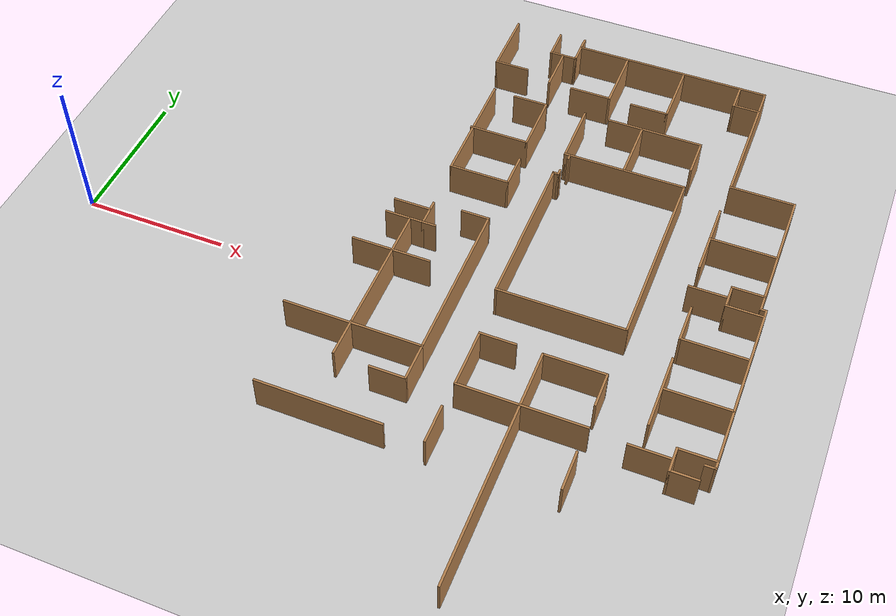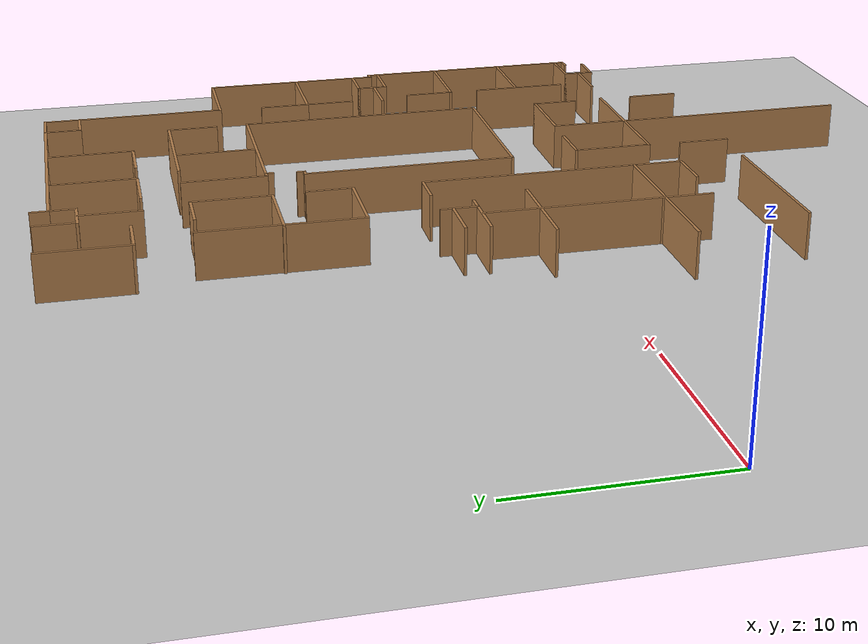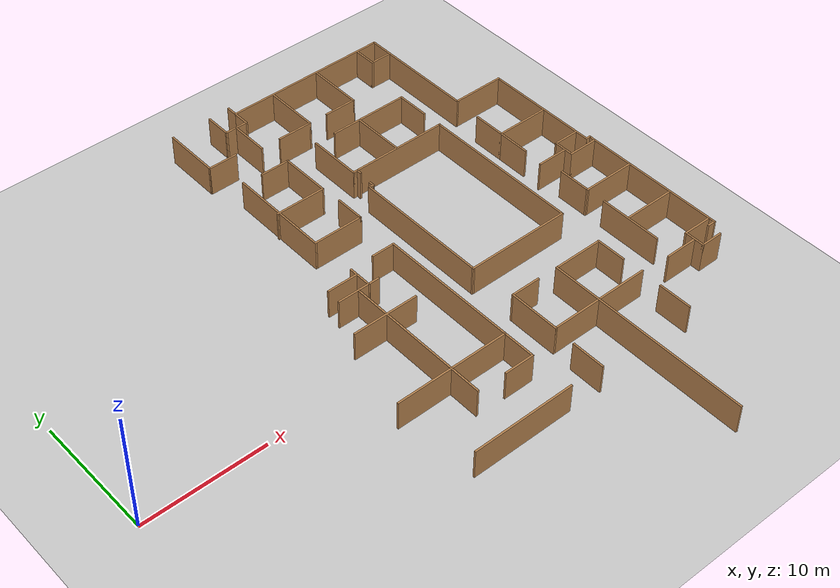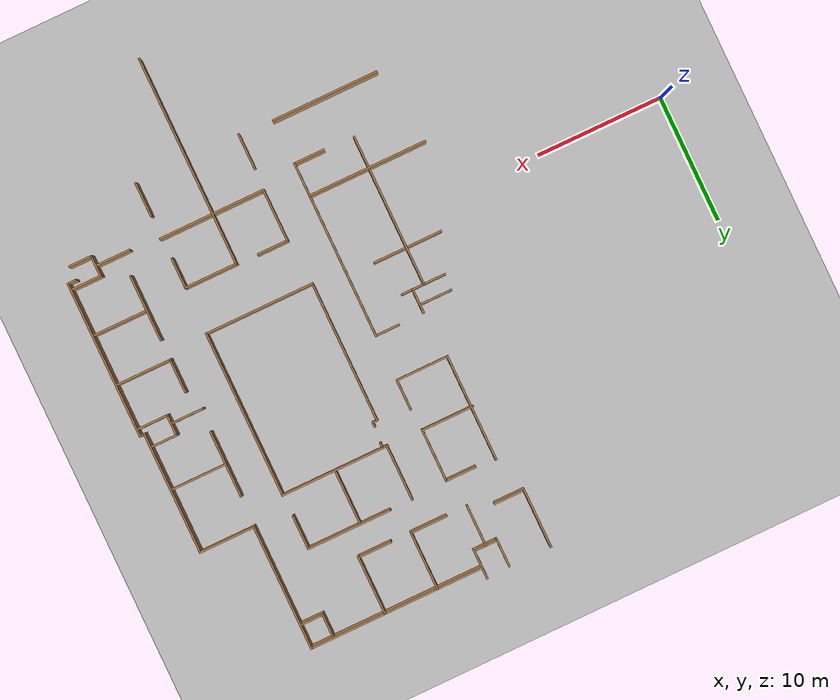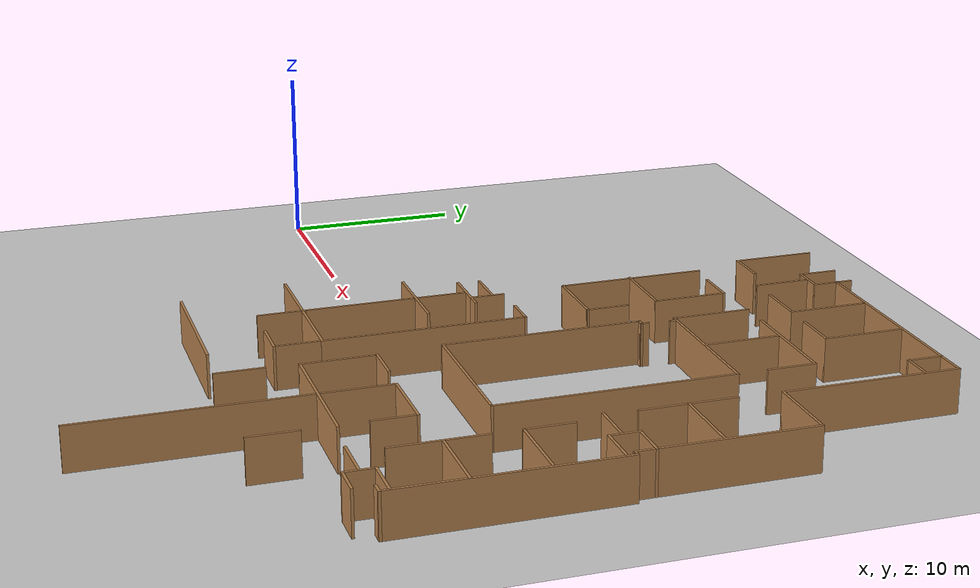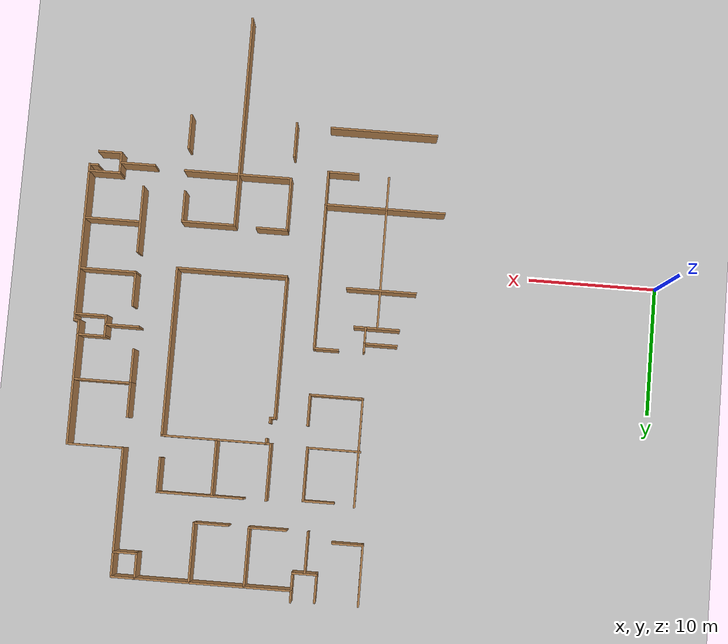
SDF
<sdf version="1.6">
 <world name="default">
  <model name="ground_plane">
   <static>1</static>
   <link name="link">
    <collision name="collision">
     <geometry><plane><normal>0 0 1</normal><size>100 100</size></plane></geometry>
     <surface><friction><ode><mu>100</mu><mu2>50</mu2></ode></friction></surface>
    </collision>
    <visual name="visual">
     <cast_shadows>0</cast_shadows>
     <geometry><plane><normal>0 0 1</normal><size>100 100</size></plane></geometry>
     <material>
      <script><uri>file://media/materials/scripts/gazebo.material</uri><name>Gazebo/Grey</name></script>
     </material>
    </visual>
   </link>
  </model>
  <model name="floor_plan">
   <link name="Wall_10">
    <collision name="Wall_10_Collision">
     <geometry><box><size>10 0.15 2.5</size></box></geometry>
     <pose>0 0 1.25 0 -0 0</pose>
    </collision>
    <visual name="Wall_10_Visual">
     <pose>0 0 1.25 0 -0 0</pose>
     <geometry><box><size>10 0.15 2.5</size></box></geometry>
     <material>
      <script><uri>file://media/materials/scripts/gazebo.material</uri><name>Gazebo/Wood</name></script>
      <ambient>1 1 1 1</ambient>
     </material>
    </visual>
    <pose>40.65 20.6964 0 0 0 -1.5708</pose>
   </link>
   <link name="Wall_100">
    <collision name="Wall_100_Collision">
     <geometry><box><size>2.25 0.15 2.5</size></box></geometry>
     <pose>0 0 1.25 0 -0 0</pose>
    </collision>
    <visual name="Wall_100_Visual">
     <pose>0 0 1.25 0 -0 0</pose>
     <geometry><box><size>2.25 0.15 2.5</size></box></geometry>
     <material>
      <script><uri>file://media/materials/scripts/gazebo.material</uri><name>Gazebo/Wood</name></script>
      <ambient>1 1 1 1</ambient>
     </material>
    </visual>
    <pose>24.95 25.3214 0 0 -0 1.5708</pose>
   </link>
   <link name="Wall_102">
    <collision name="Wall_102_Collision">
     <geometry><box><size>3.25 0.15 2.5</size></box></geometry>
     <pose>0 0 1.25 0 -0 0</pose>
    </collision>
    <visual name="Wall_102_Visual">
     <pose>0 0 1.25 0 -0 0</pose>
     <geometry><box><size>3.25 0.15 2.5</size></box></geometry>
     <material>
      <script><uri>file://media/materials/scripts/gazebo.material</uri><name>Gazebo/Wood</name></script>
      <ambient>1 1 1 1</ambient>
     </material>
    </visual>
    <pose>25.8652 22.6731 0 0 0 -1.5708</pose>
   </link>
   <link name="Wall_104">
    <collision name="Wall_104_Collision">
     <geometry><box><size>3 0.15 2.5</size></box></geometry>
     <pose>0 0 1.25 0 -0 0</pose>
    </collision>
    <visual name="Wall_104_Visual">
     <pose>0 0 1.25 0 -0 0</pose>
     <geometry><box><size>3 0.15 2.5</size></box></geometry>
     <material>
      <script><uri>file://media/materials/scripts/gazebo.material</uri><name>Gazebo/Wood</name></script>
      <ambient>1 1 1 1</ambient>
     </material>
    </visual>
    <pose>28.998 21.0922 0 0 -0 0</pose>
   </link>
   <link name="Wall_105">
    <collision name="Wall_105_Collision">
     <geometry><box><size>4.65 0.15 2.5</size></box></geometry>
     <pose>0 0 1.25 0 -0 0</pose>
    </collision>
    <visual name="Wall_105_Visual">
     <pose>0 0 1.25 0 -0 0</pose>
     <geometry><box><size>4.65 0.15 2.5</size></box></geometry>
     <material>
      <script><uri>file://media/materials/scripts/gazebo.material</uri><name>Gazebo/Wood</name></script>
      <ambient>1 1 1 1</ambient>
     </material>
    </visual>
    <pose>30.423 23.3422 0 0 -0 1.5708</pose>
   </link>
   <link name="Wall_107">
    <collision name="Wall_107_Collision">
     <geometry><box><size>2.75 0.15 2.5</size></box></geometry>
     <pose>0 0 1.25 0 -0 0</pose>
    </collision>
    <visual name="Wall_107_Visual">
     <pose>0 0 1.25 0 -0 0</pose>
     <geometry><box><size>2.75 0.15 2.5</size></box></geometry>
     <material>
      <script><uri>file://media/materials/scripts/gazebo.material</uri><name>Gazebo/Wood</name></script>
      <ambient>1 1 1 1</ambient>
     </material>
    </visual>
    <pose>33.3717 21.0672 0 0 -0 0</pose>
   </link>
   <link name="Wall_108">
    <collision name="Wall_108_Collision">
     <geometry><box><size>4.65 0.15 2.5</size></box></geometry>
     <pose>0 0 1.25 0 -0 0</pose>
    </collision>
    <visual name="Wall_108_Visual">
     <pose>0 0 1.25 0 -0 0</pose>
     <geometry><box><size>4.65 0.15 2.5</size></box></geometry>
     <material>
      <script><uri>file://media/materials/scripts/gazebo.material</uri><name>Gazebo/Wood</name></script>
      <ambient>1 1 1 1</ambient>
     </material>
    </visual>
    <pose>34.6717 23.3172 0 0 -0 1.5708</pose>
   </link>
   <link name="Wall_11">
    <collision name="Wall_11_Collision">
     <geometry><box><size>4.5 0.15 2.5</size></box></geometry>
     <pose>0 0 1.25 0 -0 0</pose>
    </collision>
    <visual name="Wall_11_Visual">
     <pose>0 0 1.25 0 -0 0</pose>
     <geometry><box><size>4.5 0.15 2.5</size></box></geometry>
     <material>
      <script><uri>file://media/materials/scripts/gazebo.material</uri><name>Gazebo/Wood</name></script>
      <ambient>1 1 1 1</ambient>
     </material>
    </visual>
    <pose>42.825 15.7714 0 0 -0 0</pose>
   </link>
   <link name="Wall_110">
    <collision name="Wall_110_Collision">
     <geometry><box><size>2 0.15 2.5</size></box></geometry>
     <pose>0 0 1.25 0 -0 0</pose>
    </collision>
    <visual name="Wall_110_Visual">
     <pose>0 0 1.25 0 -0 0</pose>
     <geometry><box><size>2 0.15 2.5</size></box></geometry>
     <material>
      <script><uri>file://media/materials/scripts/gazebo.material</uri><name>Gazebo/Wood</name></script>
      <ambient>1 1 1 1</ambient>
     </material>
    </visual>
    <pose>38.8412 24.6589 0 0 0 -1.5708</pose>
   </link>
   <link name="Wall_111">
    <collision name="Wall_111_Collision">
     <geometry><box><size>1.9 0.15 2.5</size></box></geometry>
     <pose>0 0 1.25 0 -0 0</pose>
    </collision>
    <visual name="Wall_111_Visual">
     <pose>0 0 1.25 0 -0 0</pose>
     <geometry><box><size>1.9 0.15 2.5</size></box></geometry>
     <material>
      <script><uri>file://media/materials/scripts/gazebo.material</uri><name>Gazebo/Wood</name></script>
      <ambient>1 1 1 1</ambient>
     </material>
    </visual>
    <pose>39.7162 23.7339 0 0 -0 0</pose>
   </link>
   <link name="Wall_12">
    <collision name="Wall_12_Collision">
     <geometry><box><size>9.75 0.15 2.5</size></box></geometry>
     <pose>0 0 1.25 0 -0 0</pose>
    </collision>
    <visual name="Wall_12_Visual">
     <pose>0 0 1.25 0 -0 0</pose>
     <geometry><box><size>9.75 0.15 2.5</size></box></geometry>
     <material>
      <script><uri>file://media/materials/scripts/gazebo.material</uri><name>Gazebo/Wood</name></script>
      <ambient>1 1 1 1</ambient>
     </material>
    </visual>
    <pose>45 10.9714 0 0 0 -1.5708</pose>
   </link>
   <link name="Wall_13">
    <collision name="Wall_13_Collision">
     <geometry><box><size>0.5 0.15 2.5</size></box></geometry>
     <pose>0 0 1.25 0 -0 0</pose>
    </collision>
    <visual name="Wall_13_Visual">
     <pose>0 0 1.25 0 -0 0</pose>
     <geometry><box><size>0.5 0.15 2.5</size></box></geometry>
     <material>
      <script><uri>file://media/materials/scripts/gazebo.material</uri><name>Gazebo/Wood</name></script>
      <ambient>1 1 1 1</ambient>
     </material>
    </visual>
    <pose>45.175 6.1714 0 0 -0 0</pose>
   </link>
   <link name="Wall_14">
    <collision name="Wall_14_Collision">
     <geometry><box><size>12.5 0.15 2.5</size></box></geometry>
     <pose>0 0 1.25 0 -0 0</pose>
    </collision>
    <visual name="Wall_14_Visual">
     <pose>0 0 1.25 0 -0 0</pose>
     <geometry><box><size>12.5 0.15 2.5</size></box></geometry>
     <material>
      <script><uri>file://media/materials/scripts/gazebo.material</uri><name>Gazebo/Wood</name></script>
      <ambient>1 1 1 1</ambient>
     </material>
    </visual>
    <pose>45.35 -0.003604 0 0 0 -1.5708</pose>
   </link>
   <link name="Wall_15">
    <collision name="Wall_15_Collision">
     <geometry><box><size>0.75 0.15 2.5</size></box></geometry>
     <pose>0 0 1.25 0 -0 0</pose>
    </collision>
    <visual name="Wall_15_Visual">
     <pose>0 0 1.25 0 -0 0</pose>
     <geometry><box><size>0.75 0.15 2.5</size></box></geometry>
     <material>
      <script><uri>file://media/materials/scripts/gazebo.material</uri><name>Gazebo/Wood</name></script>
      <ambient>1 1 1 1</ambient>
     </material>
    </visual>
    <pose>45.05 -6.1786 0 0 -0 3.14159</pose>
   </link>
   <link name="Wall_171">
    <collision name="Wall_171_Collision">
     <geometry><box><size>8.5 0.15 2.5</size></box></geometry>
     <pose>0 0 1.25 0 -0 0</pose>
    </collision>
    <visual name="Wall_171_Visual">
     <pose>0 0 1.25 0 -0 0</pose>
     <geometry><box><size>8.5 0.15 2.5</size></box></geometry>
     <material>
      <script><uri>file://media/materials/scripts/gazebo.material</uri><name>Gazebo/Wood</name></script>
      <ambient>1 1 1 1</ambient>
     </material>
    </visual>
    <pose>22.4756 14.7101 0 0 0 -1.5708</pose>
   </link>
   <link name="Wall_178">
    <collision name="Wall_178_Collision">
     <geometry><box><size>4.25 0.15 2.5</size></box></geometry>
     <pose>0 0 1.25 0 -0 0</pose>
    </collision>
    <visual name="Wall_178_Visual">
     <pose>0 0 1.25 0 -0 0</pose>
     <geometry><box><size>4.25 0.15 2.5</size></box></geometry>
     <material>
      <script><uri>file://media/materials/scripts/gazebo.material</uri><name>Gazebo/Wood</name></script>
      <ambient>1 1 1 1</ambient>
     </material>
    </visual>
    <pose>24.5256 10.5351 0 0 -0 0</pose>
   </link>
   <link name="Wall_179">
    <collision name="Wall_179_Collision">
     <geometry><box><size>2.5 0.15 2.5</size></box></geometry>
     <pose>0 0 1.25 0 -0 0</pose>
    </collision>
    <visual name="Wall_179_Visual">
     <pose>0 0 1.25 0 -0 0</pose>
     <geometry><box><size>2.5 0.15 2.5</size></box></geometry>
     <material>
      <script><uri>file://media/materials/scripts/gazebo.material</uri><name>Gazebo/Wood</name></script>
      <ambient>1 1 1 1</ambient>
     </material>
    </visual>
    <pose>26.5756 11.7101 0 0 -0 1.5708</pose>
   </link>
   <link name="Wall_181">
    <collision name="Wall_181_Collision">
     <geometry><box><size>4.25 0.15 2.5</size></box></geometry>
     <pose>0 0 1.25 0 -0 0</pose>
    </collision>
    <visual name="Wall_181_Visual">
     <pose>0 0 1.25 0 -0 0</pose>
     <geometry><box><size>4.25 0.15 2.5</size></box></geometry>
     <material>
      <script><uri>file://media/materials/scripts/gazebo.material</uri><name>Gazebo/Wood</name></script>
      <ambient>1 1 1 1</ambient>
     </material>
    </visual>
    <pose>24.4032 14.6405 0 0 -0 0</pose>
   </link>
   <link name="Wall_182">
    <collision name="Wall_182_Collision">
     <geometry><box><size>4.25 0.15 2.5</size></box></geometry>
     <pose>0 0 1.25 0 -0 0</pose>
    </collision>
    <visual name="Wall_182_Visual">
     <pose>0 0 1.25 0 -0 0</pose>
     <geometry><box><size>4.25 0.15 2.5</size></box></geometry>
     <material>
      <script><uri>file://media/materials/scripts/gazebo.material</uri><name>Gazebo/Wood</name></script>
      <ambient>1 1 1 1</ambient>
     </material>
    </visual>
    <pose>26.4532 16.6905 0 0 -0 1.5708</pose>
   </link>
   <link name="Wall_183">
    <collision name="Wall_183_Collision">
     <geometry><box><size>2.5 0.15 2.5</size></box></geometry>
     <pose>0 0 1.25 0 -0 0</pose>
    </collision>
    <visual name="Wall_183_Visual">
     <pose>0 0 1.25 0 -0 0</pose>
     <geometry><box><size>2.5 0.15 2.5</size></box></geometry>
     <material>
      <script><uri>file://media/materials/scripts/gazebo.material</uri><name>Gazebo/Wood</name></script>
      <ambient>1 1 1 1</ambient>
     </material>
    </visual>
    <pose>25.2782 18.7405 0 0 -0 3.14159</pose>
   </link>
   <link name="Wall_187">
    <collision name="Wall_187_Collision">
     <geometry><box><size>4.5 0.15 2.5</size></box></geometry>
     <pose>0 0 1.25 0 -0 0</pose>
    </collision>
    <visual name="Wall_187_Visual">
     <pose>0 0 1.25 0 -0 0</pose>
     <geometry><box><size>4.5 0.15 2.5</size></box></geometry>
     <material>
      <script><uri>file://media/materials/scripts/gazebo.material</uri><name>Gazebo/Wood</name></script>
      <ambient>1 1 1 1</ambient>
     </material>
    </visual>
    <pose>29.3003 16.7441 0 0 0 -1.5708</pose>
   </link>
   <link name="Wall_190">
    <collision name="Wall_190_Collision">
     <geometry><box><size>0.5 0.15 2.5</size></box></geometry>
     <pose>0 0 1.25 0 -0 0</pose>
    </collision>
    <visual name="Wall_190_Visual">
     <pose>0 0 1.25 0 -0 0</pose>
     <geometry><box><size>0.5 0.15 2.5</size></box></geometry>
     <material>
      <script><uri>file://media/materials/scripts/gazebo.material</uri><name>Gazebo/Wood</name></script>
      <ambient>1 1 1 1</ambient>
     </material>
    </visual>
    <pose>29.4753 14.5691 0 0 -0 0</pose>
   </link>
   <link name="Wall_191">
    <collision name="Wall_191_Collision">
     <geometry><box><size>0.5 0.15 2.5</size></box></geometry>
     <pose>0 0 1.25 0 -0 0</pose>
    </collision>
    <visual name="Wall_191_Visual">
     <pose>0 0 1.25 0 -0 0</pose>
     <geometry><box><size>0.5 0.15 2.5</size></box></geometry>
     <material>
      <script><uri>file://media/materials/scripts/gazebo.material</uri><name>Gazebo/Wood</name></script>
      <ambient>1 1 1 1</ambient>
     </material>
    </visual>
    <pose>29.6503 14.3941 0 0 0 -1.5708</pose>
   </link>
   <link name="Wall_193">
    <collision name="Wall_193_Collision">
     <geometry><box><size>6.75 0.15 2.5</size></box></geometry>
     <pose>0 0 1.25 0 -0 0</pose>
    </collision>
    <visual name="Wall_193_Visual">
     <pose>0 0 1.25 0 -0 0</pose>
     <geometry><box><size>6.75 0.15 2.5</size></box></geometry>
     <material>
      <script><uri>file://media/materials/scripts/gazebo.material</uri><name>Gazebo/Wood</name></script>
      <ambient>1 1 1 1</ambient>
     </material>
    </visual>
    <pose>34.4228 18.9244 0 0 -0 0</pose>
   </link>
   <link name="Wall_194">
    <collision name="Wall_194_Collision">
     <geometry><box><size>2.75 0.15 2.5</size></box></geometry>
     <pose>0 0 1.25 0 -0 0</pose>
    </collision>
    <visual name="Wall_194_Visual">
     <pose>0 0 1.25 0 -0 0</pose>
     <geometry><box><size>2.75 0.15 2.5</size></box></geometry>
     <material>
      <script><uri>file://media/materials/scripts/gazebo.material</uri><name>Gazebo/Wood</name></script>
      <ambient>1 1 1 1</ambient>
     </material>
    </visual>
    <pose>37.7228 17.6244 0 0 0 -1.5708</pose>
   </link>
   <link name="Wall_196">
    <collision name="Wall_196_Collision">
     <geometry><box><size>8.25 0.15 2.5</size></box></geometry>
     <pose>0 0 1.25 0 -0 0</pose>
    </collision>
    <visual name="Wall_196_Visual">
     <pose>0 0 1.25 0 -0 0</pose>
     <geometry><box><size>8.25 0.15 2.5</size></box></geometry>
     <material>
      <script><uri>file://media/materials/scripts/gazebo.material</uri><name>Gazebo/Wood</name></script>
      <ambient>1 1 1 1</ambient>
     </material>
    </visual>
    <pose>33.7003 14.5691 0 0 -0 0</pose>
   </link>
   <link name="Wall_197">
    <collision name="Wall_197_Collision">
     <geometry><box><size>13.25 0.15 2.5</size></box></geometry>
     <pose>0 0 1.25 0 -0 0</pose>
    </collision>
    <visual name="Wall_197_Visual">
     <pose>0 0 1.25 0 -0 0</pose>
     <geometry><box><size>13.25 0.15 2.5</size></box></geometry>
     <material>
      <script><uri>file://media/materials/scripts/gazebo.material</uri><name>Gazebo/Wood</name></script>
      <ambient>1 1 1 1</ambient>
     </material>
    </visual>
    <pose>37.7503 8.01909 0 0 0 -1.5708</pose>
   </link>
   <link name="Wall_198">
    <collision name="Wall_198_Collision">
     <geometry><box><size>8.75 0.15 2.5</size></box></geometry>
     <pose>0 0 1.25 0 -0 0</pose>
    </collision>
    <visual name="Wall_198_Visual">
     <pose>0 0 1.25 0 -0 0</pose>
     <geometry><box><size>8.75 0.15 2.5</size></box></geometry>
     <material>
      <script><uri>file://media/materials/scripts/gazebo.material</uri><name>Gazebo/Wood</name></script>
      <ambient>1 1 1 1</ambient>
     </material>
    </visual>
    <pose>33.4503 1.46909 0 0 -0 3.14159</pose>
   </link>
   <link name="Wall_199">
    <collision name="Wall_199_Collision">
     <geometry><box><size>11.25 0.15 2.5</size></box></geometry>
     <pose>0 0 1.25 0 -0 0</pose>
    </collision>
    <visual name="Wall_199_Visual">
     <pose>0 0 1.25 0 -0 0</pose>
     <geometry><box><size>11.25 0.15 2.5</size></box></geometry>
     <material>
      <script><uri>file://media/materials/scripts/gazebo.material</uri><name>Gazebo/Wood</name></script>
      <ambient>1 1 1 1</ambient>
     </material>
    </visual>
    <pose>29.1503 7.01909 0 0 -0 1.5708</pose>
   </link>
   <link name="Wall_200">
    <collision name="Wall_200_Collision">
     <geometry><box><size>0.5 0.15 2.5</size></box></geometry>
     <pose>0 0 1.25 0 -0 0</pose>
    </collision>
    <visual name="Wall_200_Visual">
     <pose>0 0 1.25 0 -0 0</pose>
     <geometry><box><size>0.5 0.15 2.5</size></box></geometry>
     <material>
      <script><uri>file://media/materials/scripts/gazebo.material</uri><name>Gazebo/Wood</name></script>
      <ambient>1 1 1 1</ambient>
     </material>
    </visual>
    <pose>29.3253 12.5691 0 0 -0 0</pose>
   </link>
   <link name="Wall_201">
    <collision name="Wall_201_Collision">
     <geometry><box><size>0.5 0.15 2.5</size></box></geometry>
     <pose>0 0 1.25 0 -0 0</pose>
    </collision>
    <visual name="Wall_201_Visual">
     <pose>0 0 1.25 0 -0 0</pose>
     <geometry><box><size>0.5 0.15 2.5</size></box></geometry>
     <material>
      <script><uri>file://media/materials/scripts/gazebo.material</uri><name>Gazebo/Wood</name></script>
      <ambient>1 1 1 1</ambient>
     </material>
    </visual>
    <pose>29.5003 12.7441 0 0 -0 1.5708</pose>
   </link>
   <link name="Wall_203">
    <collision name="Wall_203_Collision">
     <geometry><box><size>4.4 0.15 2.5</size></box></geometry>
     <pose>0 0 1.25 0 -0 0</pose>
    </collision>
    <visual name="Wall_203_Visual">
     <pose>0 0 1.25 0 -0 0</pose>
     <geometry><box><size>4.4 0.15 2.5</size></box></geometry>
     <material>
      <script><uri>file://media/materials/scripts/gazebo.material</uri><name>Gazebo/Wood</name></script>
      <ambient>1 1 1 1</ambient>
     </material>
    </visual>
    <pose>33.5048 16.7647 0 0 0 -1.5708</pose>
   </link>
   <link name="Wall_205">
    <collision name="Wall_205_Collision">
     <geometry><box><size>2.75 0.15 2.5</size></box></geometry>
     <pose>0 0 1.25 0 -0 0</pose>
    </collision>
    <visual name="Wall_205_Visual">
     <pose>0 0 1.25 0 -0 0</pose>
     <geometry><box><size>2.75 0.15 2.5</size></box></geometry>
     <material>
      <script><uri>file://media/materials/scripts/gazebo.material</uri><name>Gazebo/Wood</name></script>
      <ambient>1 1 1 1</ambient>
     </material>
    </visual>
    <pose>40.5462 12.0266 0 0 0 -1.5708</pose>
   </link>
   <link name="Wall_206">
    <collision name="Wall_206_Collision">
     <geometry><box><size>4.5 0.15 2.5</size></box></geometry>
     <pose>0 0 1.25 0 -0 0</pose>
    </collision>
    <visual name="Wall_206_Visual">
     <pose>0 0 1.25 0 -0 0</pose>
     <geometry><box><size>4.5 0.15 2.5</size></box></geometry>
     <material>
      <script><uri>file://media/materials/scripts/gazebo.material</uri><name>Gazebo/Wood</name></script>
      <ambient>1 1 1 1</ambient>
     </material>
    </visual>
    <pose>42.7212 10.7266 0 0 -0 0</pose>
   </link>
   <link name="Wall_208">
    <collision name="Wall_208_Collision">
     <geometry><box><size>2.75 0.15 2.5</size></box></geometry>
     <pose>0 0 1.25 0 -0 0</pose>
    </collision>
    <visual name="Wall_208_Visual">
     <pose>0 0 1.25 0 -0 0</pose>
     <geometry><box><size>2.75 0.15 2.5</size></box></geometry>
     <material>
      <script><uri>file://media/materials/scripts/gazebo.material</uri><name>Gazebo/Wood</name></script>
      <ambient>1 1 1 1</ambient>
     </material>
    </visual>
    <pose>40.5462 9.42658 0 0 0 -1.5708</pose>
   </link>
   <link name="Wall_210">
    <collision name="Wall_210_Collision">
     <geometry><box><size>2.25 0.15 2.5</size></box></geometry>
     <pose>0 0 1.25 0 -0 0</pose>
    </collision>
    <visual name="Wall_210_Visual">
     <pose>0 0 1.25 0 -0 0</pose>
     <geometry><box><size>2.25 0.15 2.5</size></box></geometry>
     <material>
      <script><uri>file://media/materials/scripts/gazebo.material</uri><name>Gazebo/Wood</name></script>
      <ambient>1 1 1 1</ambient>
     </material>
    </visual>
    <pose>43.9506 7.25134 0 0 -0 3.14159</pose>
   </link>
   <link name="Wall_211">
    <collision name="Wall_211_Collision">
     <geometry><box><size>1.75 0.15 2.5</size></box></geometry>
     <pose>0 0 1.25 0 -0 0</pose>
    </collision>
    <visual name="Wall_211_Visual">
     <pose>0 0 1.25 0 -0 0</pose>
     <geometry><box><size>1.75 0.15 2.5</size></box></geometry>
     <material>
      <script><uri>file://media/materials/scripts/gazebo.material</uri><name>Gazebo/Wood</name></script>
      <ambient>1 1 1 1</ambient>
     </material>
    </visual>
    <pose>42.9006 6.45134 0 0 0 -1.5708</pose>
   </link>
   <link name="Wall_212">
    <collision name="Wall_212_Collision">
     <geometry><box><size>2.5 0.15 2.5</size></box></geometry>
     <pose>0 0 1.25 0 -0 0</pose>
    </collision>
    <visual name="Wall_212_Visual">
     <pose>0 0 1.25 0 -0 0</pose>
     <geometry><box><size>2.5 0.15 2.5</size></box></geometry>
     <material>
      <script><uri>file://media/materials/scripts/gazebo.material</uri><name>Gazebo/Wood</name></script>
      <ambient>1 1 1 1</ambient>
     </material>
    </visual>
    <pose>44.0756 5.65134 0 0 -0 0</pose>
   </link>
   <link name="Wall_215">
    <collision name="Wall_215_Collision">
     <geometry><box><size>2.65 0.15 2.5</size></box></geometry>
     <pose>0 0 1.25 0 -0 0</pose>
    </collision>
    <visual name="Wall_215_Visual">
     <pose>0 0 1.25 0 -0 0</pose>
     <geometry><box><size>2.65 0.15 2.5</size></box></geometry>
     <material>
      <script><uri>file://media/materials/scripts/gazebo.material</uri><name>Gazebo/Wood</name></script>
      <ambient>1 1 1 1</ambient>
     </material>
    </visual>
    <pose>41.5966 6.31954 0 0 -0 3.14159</pose>
   </link>
   <link name="Wall_218">
    <collision name="Wall_218_Collision">
     <geometry><box><size>4.5 0.15 2.5</size></box></geometry>
     <pose>0 0 1.25 0 -0 0</pose>
    </collision>
    <visual name="Wall_218_Visual">
     <pose>0 0 1.25 0 -0 0</pose>
     <geometry><box><size>4.5 0.15 2.5</size></box></geometry>
     <material>
      <script><uri>file://media/materials/scripts/gazebo.material</uri><name>Gazebo/Wood</name></script>
      <ambient>1 1 1 1</ambient>
     </material>
    </visual>
    <pose>43.1299 2.06258 0 0 -0 3.14159</pose>
   </link>
   <link name="Wall_219">
    <collision name="Wall_219_Collision">
     <geometry><box><size>2.75 0.15 2.5</size></box></geometry>
     <pose>0 0 1.25 0 -0 0</pose>
    </collision>
    <visual name="Wall_219_Visual">
     <pose>0 0 1.25 0 -0 0</pose>
     <geometry><box><size>2.75 0.15 2.5</size></box></geometry>
     <material>
      <script><uri>file://media/materials/scripts/gazebo.material</uri><name>Gazebo/Wood</name></script>
      <ambient>1 1 1 1</ambient>
     </material>
    </visual>
    <pose>40.9549 3.36258 0 0 -0 1.5708</pose>
   </link>
   <link name="Wall_221">
    <collision name="Wall_221_Collision">
     <geometry><box><size>5.25 0.15 2.5</size></box></geometry>
     <pose>0 0 1.25 0 -0 0</pose>
    </collision>
    <visual name="Wall_221_Visual">
     <pose>0 0 1.25 0 -0 0</pose>
     <geometry><box><size>5.25 0.15 2.5</size></box></geometry>
     <material>
      <script><uri>file://media/materials/scripts/gazebo.material</uri><name>Gazebo/Wood</name></script>
      <ambient>1 1 1 1</ambient>
     </material>
    </visual>
    <pose>40.9639 -2.14991 0 0 0 -1.5708</pose>
   </link>
   <link name="Wall_223">
    <collision name="Wall_223_Collision">
     <geometry><box><size>4.4 0.15 2.5</size></box></geometry>
     <pose>0 0 1.25 0 -0 0</pose>
    </collision>
    <visual name="Wall_223_Visual">
     <pose>0 0 1.25 0 -0 0</pose>
     <geometry><box><size>4.4 0.15 2.5</size></box></geometry>
     <material>
      <script><uri>file://media/materials/scripts/gazebo.material</uri><name>Gazebo/Wood</name></script>
      <ambient>1 1 1 1</ambient>
     </material>
    </visual>
    <pose>43.2195 -1.93728 0 0 -0 3.14159</pose>
   </link>
   <link name="Wall_228">
    <collision name="Wall_228_Collision">
     <geometry><box><size>2.5 0.15 2.5</size></box></geometry>
     <pose>0 0 1.25 0 -0 0</pose>
    </collision>
    <visual name="Wall_228_Visual">
     <pose>0 0 1.25 0 -0 0</pose>
     <geometry><box><size>2.5 0.15 2.5</size></box></geometry>
     <material>
      <script><uri>file://media/materials/scripts/gazebo.material</uri><name>Gazebo/Wood</name></script>
      <ambient>1 1 1 1</ambient>
     </material>
    </visual>
    <pose>44.1176 -5.67636 0 0 -0 3.14159</pose>
   </link>
   <link name="Wall_229">
    <collision name="Wall_229_Collision">
     <geometry><box><size>1.75 0.15 2.5</size></box></geometry>
     <pose>0 0 1.25 0 -0 0</pose>
    </collision>
    <visual name="Wall_229_Visual">
     <pose>0 0 1.25 0 -0 0</pose>
     <geometry><box><size>1.75 0.15 2.5</size></box></geometry>
     <material>
      <script><uri>file://media/materials/scripts/gazebo.material</uri><name>Gazebo/Wood</name></script>
      <ambient>1 1 1 1</ambient>
     </material>
    </visual>
    <pose>42.9426 -6.47636 0 0 0 -1.5708</pose>
   </link>
   <link name="Wall_230">
    <collision name="Wall_230_Collision">
     <geometry><box><size>1.9 0.15 2.5</size></box></geometry>
     <pose>0 0 1.25 0 -0 0</pose>
    </collision>
    <visual name="Wall_230_Visual">
     <pose>0 0 1.25 0 -0 0</pose>
     <geometry><box><size>1.9 0.15 2.5</size></box></geometry>
     <material>
      <script><uri>file://media/materials/scripts/gazebo.material</uri><name>Gazebo/Wood</name></script>
      <ambient>1 1 1 1</ambient>
     </material>
    </visual>
    <pose>43.8176 -7.27636 0 0 -0 0</pose>
   </link>
   <link name="Wall_232">
    <collision name="Wall_232_Collision">
     <geometry><box><size>2.75 0.15 2.5</size></box></geometry>
     <pose>0 0 1.25 0 -0 0</pose>
    </collision>
    <visual name="Wall_232_Visual">
     <pose>0 0 1.25 0 -0 0</pose>
     <geometry><box><size>2.75 0.15 2.5</size></box></geometry>
     <material>
      <script><uri>file://media/materials/scripts/gazebo.material</uri><name>Gazebo/Wood</name></script>
      <ambient>1 1 1 1</ambient>
     </material>
    </visual>
    <pose>41.5582 -6.4904 0 0 -0 3.14159</pose>
   </link>
   <link name="Wall_247">
    <collision name="Wall_247_Collision">
     <geometry><box><size>16.75 0.15 2.5</size></box></geometry>
     <pose>0 0 1.25 0 -0 0</pose>
    </collision>
    <visual name="Wall_247_Visual">
     <pose>0 0 1.25 0 -0 0</pose>
     <geometry><box><size>16.75 0.15 2.5</size></box></geometry>
     <material>
      <script><uri>file://media/materials/scripts/gazebo.material</uri><name>Gazebo/Wood</name></script>
      <ambient>1 1 1 1</ambient>
     </material>
    </visual>
    <pose>33.575 -10.534 0 0 -0 1.5708</pose>
   </link>
   <link name="Wall_249">
    <collision name="Wall_249_Collision">
     <geometry><box><size>2.5 0.15 2.5</size></box></geometry>
     <pose>0 0 1.25 0 -0 0</pose>
    </collision>
    <visual name="Wall_249_Visual">
     <pose>0 0 1.25 0 -0 0</pose>
     <geometry><box><size>2.5 0.15 2.5</size></box></geometry>
     <material>
      <script><uri>file://media/materials/scripts/gazebo.material</uri><name>Gazebo/Wood</name></script>
      <ambient>1 1 1 1</ambient>
     </material>
    </visual>
    <pose>30.631 -2.1715 0 0 -0 3.14159</pose>
   </link>
   <link name="Wall_250">
    <collision name="Wall_250_Collision">
     <geometry><box><size>4.25 0.15 2.5</size></box></geometry>
     <pose>0 0 1.25 0 -0 0</pose>
    </collision>
    <visual name="Wall_250_Visual">
     <pose>0 0 1.25 0 -0 0</pose>
     <geometry><box><size>4.25 0.15 2.5</size></box></geometry>
     <material>
      <script><uri>file://media/materials/scripts/gazebo.material</uri><name>Gazebo/Wood</name></script>
      <ambient>1 1 1 1</ambient>
     </material>
    </visual>
    <pose>29.456 -4.2215 0 0 0 -1.5708</pose>
   </link>
   <link name="Wall_251">
    <collision name="Wall_251_Collision">
     <geometry><box><size>8.5 0.15 2.5</size></box></geometry>
     <pose>0 0 1.25 0 -0 0</pose>
    </collision>
    <visual name="Wall_251_Visual">
     <pose>0 0 1.25 0 -0 0</pose>
     <geometry><box><size>8.5 0.15 2.5</size></box></geometry>
     <material>
      <script><uri>file://media/materials/scripts/gazebo.material</uri><name>Gazebo/Wood</name></script>
      <ambient>1 1 1 1</ambient>
     </material>
    </visual>
    <pose>33.631 -6.2715 0 0 -0 0</pose>
   </link>
   <link name="Wall_253">
    <collision name="Wall_253_Collision">
     <geometry><box><size>4.25 0.15 2.5</size></box></geometry>
     <pose>0 0 1.25 0 -0 0</pose>
    </collision>
    <visual name="Wall_253_Visual">
     <pose>0 0 1.25 0 -0 0</pose>
     <geometry><box><size>4.25 0.15 2.5</size></box></geometry>
     <material>
      <script><uri>file://media/materials/scripts/gazebo.material</uri><name>Gazebo/Wood</name></script>
      <ambient>1 1 1 1</ambient>
     </material>
    </visual>
    <pose>35.6251 -2.23396 0 0 -0 0</pose>
   </link>
   <link name="Wall_254">
    <collision name="Wall_254_Collision">
     <geometry><box><size>2.5 0.15 2.5</size></box></geometry>
     <pose>0 0 1.25 0 -0 0</pose>
    </collision>
    <visual name="Wall_254_Visual">
     <pose>0 0 1.25 0 -0 0</pose>
     <geometry><box><size>2.5 0.15 2.5</size></box></geometry>
     <material>
      <script><uri>file://media/materials/scripts/gazebo.material</uri><name>Gazebo/Wood</name></script>
      <ambient>1 1 1 1</ambient>
     </material>
    </visual>
    <pose>37.675 -3.40896 0 0 0 -1.5708</pose>
   </link>
   <link name="Wall_256">
    <collision name="Wall_256_Collision">
     <geometry><box><size>2.75 0.15 2.5</size></box></geometry>
     <pose>0 0 1.25 0 -0 0</pose>
    </collision>
    <visual name="Wall_256_Visual">
     <pose>0 0 1.25 0 -0 0</pose>
     <geometry><box><size>2.75 0.15 2.5</size></box></geometry>
     <material>
      <script><uri>file://media/materials/scripts/gazebo.material</uri><name>Gazebo/Wood</name></script>
      <ambient>1 1 1 1</ambient>
     </material>
    </visual>
    <pose>29.357 -9.40409 0 0 0 -1.5708</pose>
   </link>
   <link name="Wall_258">
    <collision name="Wall_258_Collision">
     <geometry><box><size>2.75 0.15 2.5</size></box></geometry>
     <pose>0 0 1.25 0 -0 0</pose>
    </collision>
    <visual name="Wall_258_Visual">
     <pose>0 0 1.25 0 -0 0</pose>
     <geometry><box><size>2.75 0.15 2.5</size></box></geometry>
     <material>
      <script><uri>file://media/materials/scripts/gazebo.material</uri><name>Gazebo/Wood</name></script>
      <ambient>1 1 1 1</ambient>
     </material>
    </visual>
    <pose>37.707 -9.40409 0 0 -0 1.5708</pose>
   </link>
   <link name="Wall_411">
    <collision name="Wall_411_Collision">
     <geometry><box><size>8.5 0.15 2.5</size></box></geometry>
     <pose>0 0 1.25 0 -0 0</pose>
    </collision>
    <visual name="Wall_411_Visual">
     <pose>0 0 1.25 0 -0 0</pose>
     <geometry><box><size>8.5 0.15 2.5</size></box></geometry>
     <material>
      <script><uri>file://media/materials/scripts/gazebo.material</uri><name>Gazebo/Wood</name></script>
      <ambient>1 1 1 1</ambient>
     </material>
    </visual>
    <pose>22.435 -10.564 0 0 -0 0</pose>
   </link>
   <link name="Wall_425">
    <collision name="Wall_425_Collision">
     <geometry><box><size>9.5 0.15 2.5</size></box></geometry>
     <pose>0 0 1.25 0 -0 0</pose>
    </collision>
    <visual name="Wall_425_Visual">
     <pose>0 0 1.25 0 -0 0</pose>
     <geometry><box><size>9.5 0.15 2.5</size></box></geometry>
     <material>
      <script><uri>file://media/materials/scripts/gazebo.material</uri><name>Gazebo/Wood</name></script>
      <ambient>1 1 1 1</ambient>
     </material>
    </visual>
    <pose>21.8934 -4.43668 0 0 -0 0</pose>
   </link>
   <link name="Wall_428">
    <collision name="Wall_428_Collision">
     <geometry><box><size>11.5 0.15 2.5</size></box></geometry>
     <pose>0 0 1.25 0 -0 0</pose>
    </collision>
    <visual name="Wall_428_Visual">
     <pose>0 0 1.25 0 -0 0</pose>
     <geometry><box><size>11.5 0.15 2.5</size></box></geometry>
     <material>
      <script><uri>file://media/materials/scripts/gazebo.material</uri><name>Gazebo/Wood</name></script>
      <ambient>1 1 1 1</ambient>
     </material>
    </visual>
    <pose>26.5684 1.23832 0 0 -0 1.5708</pose>
   </link>
   <link name="Wall_429">
    <collision name="Wall_429_Collision">
     <geometry><box><size>2 0.15 2.5</size></box></geometry>
     <pose>0 0 1.25 0 -0 0</pose>
    </collision>
    <visual name="Wall_429_Visual">
     <pose>0 0 1.25 0 -0 0</pose>
     <geometry><box><size>2 0.15 2.5</size></box></geometry>
     <material>
      <script><uri>file://media/materials/scripts/gazebo.material</uri><name>Gazebo/Wood</name></script>
      <ambient>1 1 1 1</ambient>
     </material>
    </visual>
    <pose>25.6434 6.91331 0 0 -0 3.14159</pose>
   </link>
   <link name="Wall_432">
    <collision name="Wall_432_Collision">
     <geometry><box><size>2.75 0.15 2.5</size></box></geometry>
     <pose>0 0 1.25 0 -0 0</pose>
    </collision>
    <visual name="Wall_432_Visual">
     <pose>0 0 1.25 0 -0 0</pose>
     <geometry><box><size>2.75 0.15 2.5</size></box></geometry>
     <material>
      <script><uri>file://media/materials/scripts/gazebo.material</uri><name>Gazebo/Wood</name></script>
      <ambient>1 1 1 1</ambient>
     </material>
    </visual>
    <pose>21.3799 4.99946 0 0 -0 0</pose>
   </link>
   <link name="Wall_433">
    <collision name="Wall_433_Collision">
     <geometry><box><size>2 0.15 2.5</size></box></geometry>
     <pose>0 0 1.25 0 -0 0</pose>
    </collision>
    <visual name="Wall_433_Visual">
     <pose>0 0 1.25 0 -0 0</pose>
     <geometry><box><size>2 0.15 2.5</size></box></geometry>
     <material>
      <script><uri>file://media/materials/scripts/gazebo.material</uri><name>Gazebo/Wood</name></script>
      <ambient>1 1 1 1</ambient>
     </material>
    </visual>
    <pose>22.6799 5.92446 0 0 -0 1.5708</pose>
   </link>
   <link name="Wall_435">
    <collision name="Wall_435_Collision">
     <geometry><box><size>2.6 0.15 2.5</size></box></geometry>
     <pose>0 0 1.25 0 -0 0</pose>
    </collision>
    <visual name="Wall_435_Visual">
     <pose>0 0 1.25 0 -0 0</pose>
     <geometry><box><size>2.6 0.15 2.5</size></box></geometry>
     <material>
      <script><uri>file://media/materials/scripts/gazebo.material</uri><name>Gazebo/Wood</name></script>
      <ambient>1 1 1 1</ambient>
     </material>
    </visual>
    <pose>21.4007 6.24283 0 0 -0 0</pose>
   </link>
   <link name="Wall_439">
    <collision name="Wall_439_Collision">
     <geometry><box><size>1 0.15 2.5</size></box></geometry>
     <pose>0 0 1.25 0 -0 0</pose>
    </collision>
    <visual name="Wall_439_Visual">
     <pose>0 0 1.25 0 -0 0</pose>
     <geometry><box><size>1 0.15 2.5</size></box></geometry>
     <material>
      <script><uri>file://media/materials/scripts/gazebo.material</uri><name>Gazebo/Wood</name></script>
      <ambient>1 1 1 1</ambient>
     </material>
    </visual>
    <pose>23.1049 4.99946 0 0 -0 0</pose>
   </link>
   <link name="Wall_442">
    <collision name="Wall_442_Collision">
     <geometry><box><size>9.4 0.15 2.5</size></box></geometry>
     <pose>0 0 1.25 0 -0 0</pose>
    </collision>
    <visual name="Wall_442_Visual">
     <pose>0 0 1.25 0 -0 0</pose>
     <geometry><box><size>9.4 0.15 2.5</size></box></geometry>
     <material>
      <script><uri>file://media/materials/scripts/gazebo.material</uri><name>Gazebo/Wood</name></script>
      <ambient>1 1 1 1</ambient>
     </material>
    </visual>
    <pose>21.7721 0.299639 0 0 -0 1.5708</pose>
   </link>
   <link name="Wall_444">
    <collision name="Wall_444_Collision">
     <geometry><box><size>5.5 0.15 2.5</size></box></geometry>
     <pose>0 0 1.25 0 -0 0</pose>
    </collision>
    <visual name="Wall_444_Visual">
     <pose>0 0 1.25 0 -0 0</pose>
     <geometry><box><size>5.5 0.15 2.5</size></box></geometry>
     <material>
      <script><uri>file://media/materials/scripts/gazebo.material</uri><name>Gazebo/Wood</name></script>
      <ambient>1 1 1 1</ambient>
     </material>
    </visual>
    <pose>21.6693 2.02832 0 0 -0 0</pose>
   </link>
   <link name="Wall_450">
    <collision name="Wall_450_Collision">
     <geometry><box><size>2.75 0.15 2.5</size></box></geometry>
     <pose>0 0 1.25 0 -0 0</pose>
    </collision>
    <visual name="Wall_450_Visual">
     <pose>0 0 1.25 0 -0 0</pose>
     <geometry><box><size>2.75 0.15 2.5</size></box></geometry>
     <material>
      <script><uri>file://media/materials/scripts/gazebo.material</uri><name>Gazebo/Wood</name></script>
      <ambient>1 1 1 1</ambient>
     </material>
    </visual>
    <pose>21.7721 -5.62536 0 0 0 -1.5708</pose>
   </link>
   <link name="Wall_452">
    <collision name="Wall_452_Collision">
     <geometry><box><size>2.75 0.15 2.5</size></box></geometry>
     <pose>0 0 1.25 0 -0 0</pose>
    </collision>
    <visual name="Wall_452_Visual">
     <pose>0 0 1.25 0 -0 0</pose>
     <geometry><box><size>2.75 0.15 2.5</size></box></geometry>
     <material>
      <script><uri>file://media/materials/scripts/gazebo.material</uri><name>Gazebo/Wood</name></script>
      <ambient>1 1 1 1</ambient>
     </material>
    </visual>
    <pose>26.5684 -5.73668 0 0 0 -1.5708</pose>
   </link>
   <link name="Wall_453">
    <collision name="Wall_453_Collision">
     <geometry><box><size>2.5 0.15 2.5</size></box></geometry>
     <pose>0 0 1.25 0 -0 0</pose>
    </collision>
    <visual name="Wall_453_Visual">
     <pose>0 0 1.25 0 -0 0</pose>
     <geometry><box><size>2.5 0.15 2.5</size></box></geometry>
     <material>
      <script><uri>file://media/materials/scripts/gazebo.material</uri><name>Gazebo/Wood</name></script>
      <ambient>1 1 1 1</ambient>
     </material>
    </visual>
    <pose>25.3934 -7.03669 0 0 -0 3.14159</pose>
   </link>
   <link name="Wall_8">
    <collision name="Wall_8_Collision">
     <geometry><box><size>1 0.15 2.5</size></box></geometry>
     <pose>0 0 1.25 0 -0 0</pose>
    </collision>
    <visual name="Wall_8_Visual">
     <pose>0 0 1.25 0 -0 0</pose>
     <geometry><box><size>1 0.15 2.5</size></box></geometry>
     <material>
      <script><uri>file://media/materials/scripts/gazebo.material</uri><name>Gazebo/Wood</name></script>
      <ambient>1 1 1 1</ambient>
     </material>
    </visual>
    <pose>26.8 26.0464 0 0 0 -1.5708</pose>
   </link>
   <link name="Wall_88">
    <collision name="Wall_88_Collision">
     <geometry><box><size>4.75 0.15 2.5</size></box></geometry>
     <pose>0 0 1.25 0 -0 0</pose>
    </collision>
    <visual name="Wall_88_Visual">
     <pose>0 0 1.25 0 -0 0</pose>
     <geometry><box><size>4.75 0.15 2.5</size></box></geometry>
     <material>
      <script><uri>file://media/materials/scripts/gazebo.material</uri><name>Gazebo/Wood</name></script>
      <ambient>1 1 1 1</ambient>
     </material>
    </visual>
    <pose>21.5829 24.0837 0 0 -0 1.5708</pose>
   </link>
   <link name="Wall_9">
    <collision name="Wall_9_Collision">
     <geometry><box><size>14 0.15 2.5</size></box></geometry>
     <pose>0 0 1.25 0 -0 0</pose>
    </collision>
    <visual name="Wall_9_Visual">
     <pose>0 0 1.25 0 -0 0</pose>
     <geometry><box><size>14 0.15 2.5</size></box></geometry>
     <material>
      <script><uri>file://media/materials/scripts/gazebo.material</uri><name>Gazebo/Wood</name></script>
      <ambient>1 1 1 1</ambient>
     </material>
    </visual>
    <pose>33.725 25.6214 0 0 -0 0</pose>
   </link>
   <link name="Wall_90">
    <collision name="Wall_90_Collision">
     <geometry><box><size>2.5 0.15 2.5</size></box></geometry>
     <pose>0 0 1.25 0 -0 0</pose>
    </collision>
    <visual name="Wall_90_Visual">
     <pose>0 0 1.25 0 -0 0</pose>
     <geometry><box><size>2.5 0.15 2.5</size></box></geometry>
     <material>
      <script><uri>file://media/materials/scripts/gazebo.material</uri><name>Gazebo/Wood</name></script>
      <ambient>1 1 1 1</ambient>
     </material>
    </visual>
    <pose>22.7579 21.7837 0 0 -0 0</pose>
   </link>
   <link name="Wall_97">
    <collision name="Wall_97_Collision">
     <geometry><box><size>1.5 0.15 2.5</size></box></geometry>
     <pose>0 0 1.25 0 -0 0</pose>
    </collision>
    <visual name="Wall_97_Visual">
     <pose>0 0 1.25 0 -0 0</pose>
     <geometry><box><size>1.5 0.15 2.5</size></box></geometry>
     <material>
      <script><uri>file://media/materials/scripts/gazebo.material</uri><name>Gazebo/Wood</name></script>
      <ambient>1 1 1 1</ambient>
     </material>
    </visual>
    <pose>26.8 24.9464 0 0 0 -1.5708</pose>
   </link>
   <link name="Wall_99">
    <collision name="Wall_99_Collision">
     <geometry><box><size>2 0.15 2.5</size></box></geometry>
     <pose>0 0 1.25 0 -0 0</pose>
    </collision>
    <visual name="Wall_99_Visual">
     <pose>0 0 1.25 0 -0 0</pose>
     <geometry><box><size>2 0.15 2.5</size></box></geometry>
     <material>
      <script><uri>file://media/materials/scripts/gazebo.material</uri><name>Gazebo/Wood</name></script>
      <ambient>1 1 1 1</ambient>
     </material>
    </visual>
    <pose>25.875 24.2714 0 0 -0 3.14159</pose>
   </link>
   <static>1</static>
  </model>
 </world>
</sdf>
